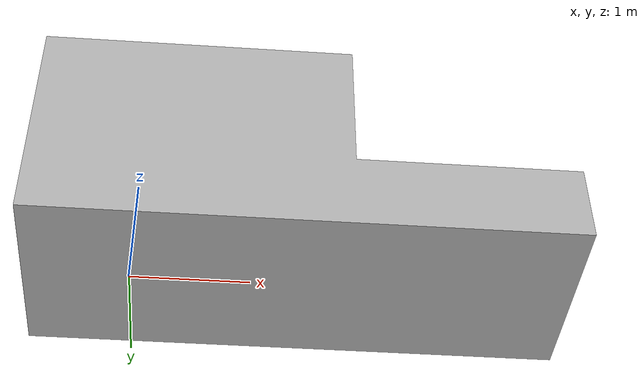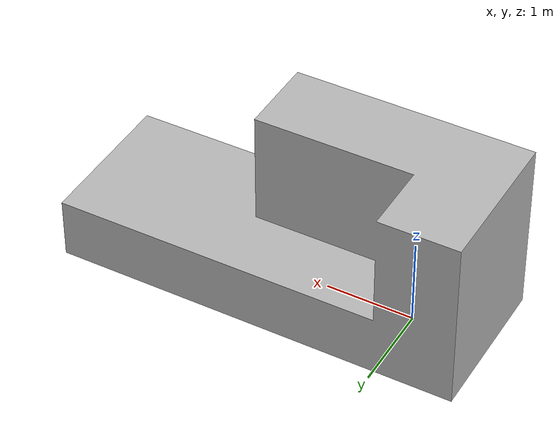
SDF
<?xml version="1.0" ?>
<sdf version="1.5">
  <model name='obs10'>
    <static>true</static>
    <link name="link">
      <collision name='collision'>
        <geometry>
          <mesh>
            <uri>model://obs10/mesh/Obs10.stl</uri>
            <scale>0.01 0.01 0.01</scale>
          </mesh>
        </geometry>
      </collision>

      <visual name='visual'>
        <geometry>
          <mesh>
            <uri>model://obs10/mesh/Obs10.stl</uri>
            <scale>0.01 0.01 0.01</scale>
          </mesh>
        </geometry>
        <material>
          <script>
            <uri>model://obs10/materials/scripts</uri>
            <uri>model://obs10/materials/textures</uri>
            <name>buildMat/Tex10</name>
          </script>
        </material>
      </visual>
    </link>
  </model>
</sdf>
